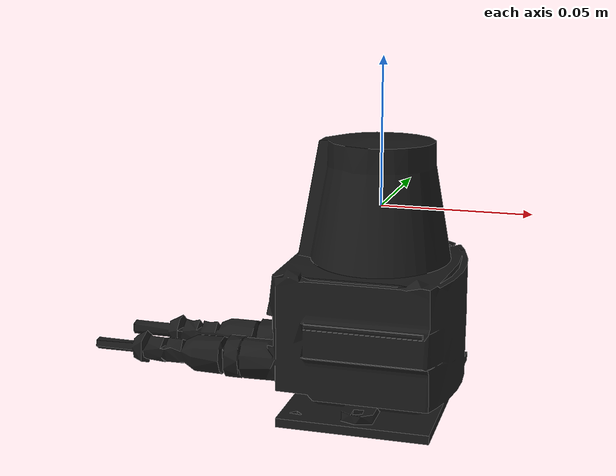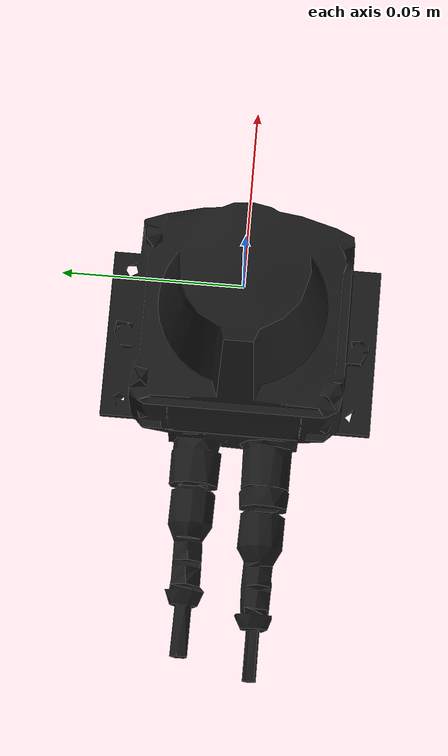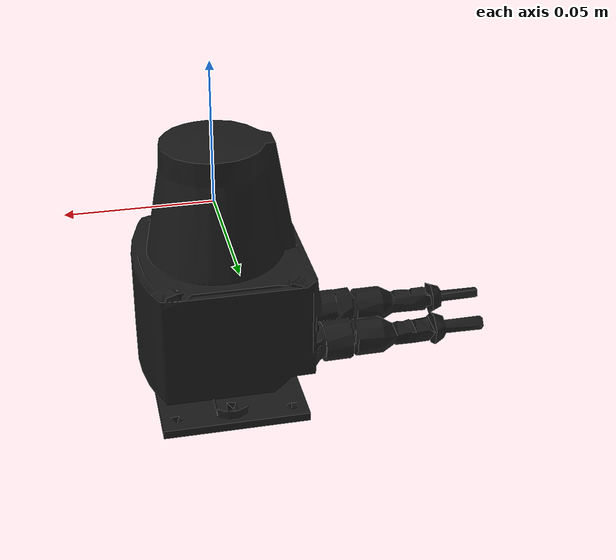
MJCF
<mujoco model="sick_tim571">
  <compiler angle="radian" meshdir="meshes" autolimits="true"/>

  <asset>
    <material name="sick_tim551_mat" rgba="0.1 0.1 0.1 1"/>
    <mesh name="sick_tim551" file="sick_tim551.obj"/>
  </asset>

  <worldbody>
    <body name="mount">
      <inertial pos="-0.02559 -0.00056 -0.05732" mass="0.28922" fullinertia="0.00002628919 0.00003374542 0.00005832599 0.00000024298 -0.00000368129 -0.0000000133"/>
      <geom name="sick_tim571_visual" type="mesh" mesh="sick_tim551" material="sick_tim551_mat"
            contype="0" conaffinity="0"/>
      <!-- The vendor's own collision: a 1 cm cylinder at the link origin, not the housing. -->
      <geom name="sick_tim571_collision" type="cylinder" pos="0 0 0" size="0.01 0.005" group="3"/>
      <site name="scan" pos="0 0 0" size="0.005"/>
    </body>
  </worldbody>
</mujoco>
